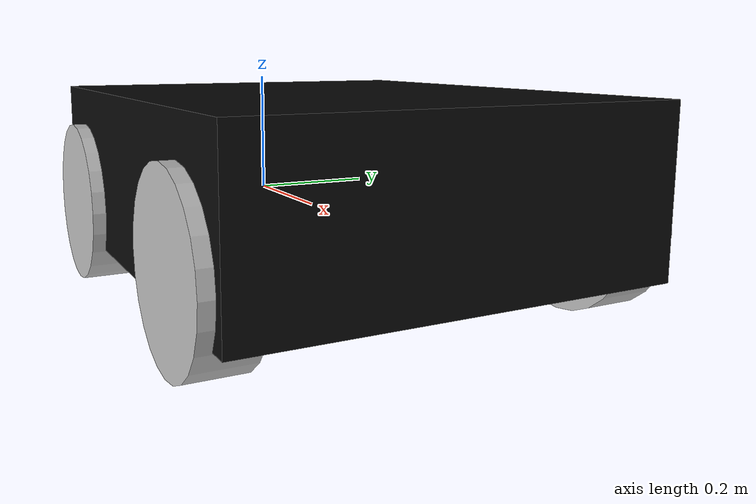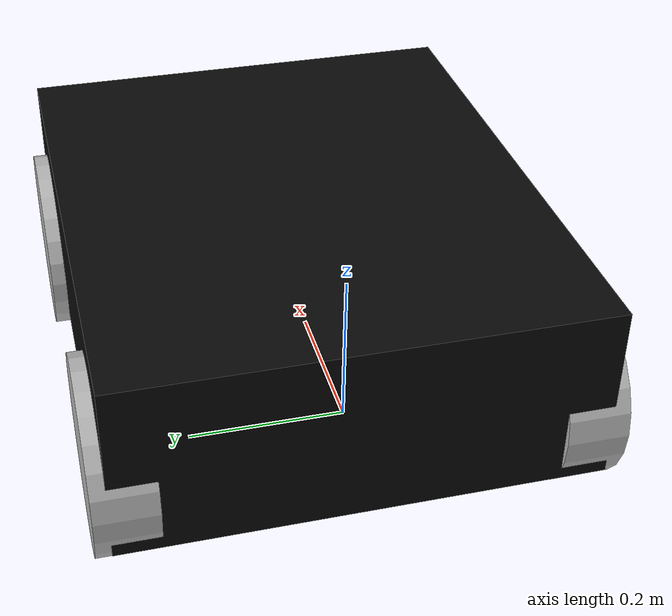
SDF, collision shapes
<sdf version="1.7">
  <model name="ackermann_current">
    <allow_auto_disable>false</allow_auto_disable>
    <link name="base_link">
      <gravity>true</gravity>
      <self_collide>false</self_collide>
      <inertial>
        <pose>0.262391507626 0 0.061550501734 0 0 0</pose>
        <mass>50</mass>
        <inertia>
          <ixx>1.91400003433</ixx>
          <ixy>0</ixy>
          <ixz>0</ixz>
          <iyy>2.67199993134</iyy>
          <iyz>0</iyz>
          <izz>4.08400011063</izz>
        </inertia>
      </inertial>
      <collision name="vehicle_body_collision">
        <pose>0.262391507626 0 0.061550501734 0 0 0</pose>
        <geometry>
          <box>
            <size>0.761610984802 0.631783008575 0.245800003409</size>
          </box>
        </geometry>
      </collision>
      <visual name="vehicle_body_visual">
        <pose>0 0 0 0 0 0</pose>
        <geometry>
          <mesh>
            <uri>package://agribot_vehicle_description/generated/ackermann_current/models/vehicle_visual.obj</uri>
          </mesh>
        </geometry>
      </visual>
      <visual name="imu_visual">
        <pose>0.1425 0 0.143 0.000572424 -0.009139547 -0.000002616</pose>
        <geometry>
          <mesh>
            <uri>model://agribot_hardware_bringup/meshes/hipnuc_n300pro.glb</uri>
          </mesh>
        </geometry>
      </visual>
      <visual name="c16_visual">
        <pose>0.480089121 -0.000371330 0.184451502 0.007648487 0.001835661 -3.141585634</pose>
        <geometry>
          <mesh>
            <uri>model://agribot_hardware_bringup/meshes/lslidar_c16_v4.glb</uri>
          </mesh>
        </geometry>
      </visual>
      <visual name="camera_body_visual">
        <pose>0.5535 0 0.154 0 0 0</pose>
        <geometry>
          <box>
            <size>0.044 0.040 0.040</size>
          </box>
        </geometry>
        <material>
          <ambient>0.035 0.035 0.035 1</ambient>
          <diffuse>0.035 0.035 0.035 1</diffuse>
        </material>
      </visual>
      <visual name="camera_lens_visual">
        <pose>0.5815 0 0.154 0 1.5707963267948966 0</pose>
        <geometry>
          <cylinder>
            <radius>0.014</radius>
            <length>0.012</length>
          </cylinder>
        </geometry>
        <material>
          <ambient>0.02 0.02 0.02 1</ambient>
          <diffuse>0.02 0.02 0.02 1</diffuse>
        </material>
      </visual>
      <visual name="rtk_master_radome">
        <pose>0.1425 0.2952585 0.76676 0 0 0</pose>
        <geometry>
          <cylinder>
            <radius>0.0225</radius>
            <length>0.036</length>
          </cylinder>
        </geometry>
        <material>
          <ambient>0.88 0.88 0.84 1</ambient>
          <diffuse>0.88 0.88 0.84 1</diffuse>
        </material>
      </visual>
      <visual name="rtk_master_stem">
        <pose>0.1425 0.2952585 0.69476 0 0 0</pose>
        <geometry>
          <cylinder>
            <radius>0.008</radius>
            <length>0.108</length>
          </cylinder>
        </geometry>
        <material>
          <ambient>0.06 0.06 0.06 1</ambient>
          <diffuse>0.06 0.06 0.06 1</diffuse>
        </material>
      </visual>
      <visual name="rtk_secondary_radome">
        <pose>0.1425 -0.2952585 0.76676 0 0 0</pose>
        <geometry>
          <cylinder>
            <radius>0.0225</radius>
            <length>0.036</length>
          </cylinder>
        </geometry>
        <material>
          <ambient>0.88 0.88 0.84 1</ambient>
          <diffuse>0.88 0.88 0.84 1</diffuse>
        </material>
      </visual>
      <visual name="rtk_secondary_stem">
        <pose>0.1425 -0.2952585 0.69476 0 0 0</pose>
        <geometry>
          <cylinder>
            <radius>0.008</radius>
            <length>0.108</length>
          </cylinder>
        </geometry>
        <material>
          <ambient>0.06 0.06 0.06 1</ambient>
          <diffuse>0.06 0.06 0.06 1</diffuse>
        </material>
      </visual>
      <sensor name="n300pro_imu" type="imu">
        <pose>0.14250010252 2.8882130465e-08 0.143001556396 0.00057242391631 -0.00913954898715 -2.61600803242e-06</pose>
        <always_on>true</always_on>
        <update_rate>100</update_rate>
        <visualize>false</visualize>
        <imu>
          <angular_velocity>
            <x>
              <noise type="gaussian">
                <mean>0</mean>
                <stddev>0.0008023</stddev>
              </noise>
            </x>
            <y>
              <noise type="gaussian">
                <mean>0</mean>
                <stddev>0.0008023</stddev>
              </noise>
            </y>
            <z>
              <noise type="gaussian">
                <mean>0</mean>
                <stddev>0.0008023</stddev>
              </noise>
            </z>
          </angular_velocity>
          <linear_acceleration>
            <x>
              <noise type="gaussian">
                <mean>0</mean>
                <stddev>0.01091</stddev>
              </noise>
            </x>
            <y>
              <noise type="gaussian">
                <mean>0</mean>
                <stddev>0.01091</stddev>
              </noise>
            </y>
            <z>
              <noise type="gaussian">
                <mean>0</mean>
                <stddev>0.01091</stddev>
              </noise>
            </z>
          </linear_acceleration>
        </imu>
        <plugin name="n300pro_imu_controller" filename="libgazebo_ros_imu_sensor.so">
          <ros>
            <namespace>/</namespace>
            <remapping>~/out:=imu/data</remapping>
          </ros>
          <frame_name>imu_link</frame_name>
        </plugin>
      </sensor>
      <sensor name="lslidar_c16_points" type="ray">
        <pose>0.48000010848 1.83202484294e-08 0.233001708984 -0.00764848850667 -0.00183566112537 7.01999988451e-06</pose>
        <always_on>true</always_on>
        <update_rate>10</update_rate>
        <visualize>false</visualize>
        <ray>
          <scan>
            <horizontal>
              <samples>2000</samples>
              <resolution>1</resolution>
              <min_angle>-3.141592653589793</min_angle>
              <max_angle>3.141592653589793</max_angle>
            </horizontal>
            <vertical>
              <samples>16</samples>
              <resolution>1</resolution>
              <min_angle>-0.2792526803190927</min_angle>
              <max_angle>0.24434609527920614</max_angle>
            </vertical>
          </scan>
          <range>
            <min>0.3</min>
            <max>100.0</max>
            <resolution>0.01</resolution>
          </range>
          <noise>
            <type>gaussian</type>
            <mean>0</mean>
            <stddev>0.01</stddev>
          </noise>
        </ray>
        <plugin name="c16_controller" filename="libgazebo_ros_velodyne_laser.so">
          <ros>
            <namespace>/</namespace>
            <remapping>~/out:=lidar/points</remapping>
          </ros>
          <frame_name>lidar_link</frame_name>
          <organize_cloud>false</organize_cloud>
          <min_range>0.3</min_range>
          <max_range>100.0</max_range>
          <gaussian_noise>0.01</gaussian_noise>
        </plugin>
      </sensor>
      <sensor name="hikrobot_right_camera" type="camera">
        <pose>0.575500130653 -9.59825552371e-09 0.154001235962 -2.32920654986e-10 7.77125586104e-11 1.45519152284e-11</pose>
        <always_on>true</always_on>
        <update_rate>10</update_rate>
        <visualize>false</visualize>
        <camera name="right_camera">
          <horizontal_fov>0.9362410911749182</horizontal_fov>
          <vertical_fov>0.7692094306470061</vertical_fov>
          <image>
            <width>1280</width>
            <height>1024</height>
            <format>R8G8B8</format>
          </image>
          <clip>
            <near>0.05</near>
            <far>100.0</far>
          </clip>
          <distortion>
            <k1>-0.06420938</k1>
            <k2>0.07455611</k2>
            <p1>-0.00096336</p1>
            <p2>0.00001838</p2>
            <k3>0.0</k3>
            <center>0.50993772734375 0.49129508185546875</center>
          </distortion>
          <noise>
            <type>gaussian</type>
            <mean>0</mean>
            <stddev>0.003</stddev>
          </noise>
        </camera>
        <plugin name="hikrobot_camera_controller" filename="libgazebo_ros_camera.so">
          <ros>
            <namespace>/</namespace>
            <remapping>camera/image_raw:=camera/rgb/image_raw</remapping>
            <remapping>camera/camera_info:=camera/rgb/camera_info</remapping>
          </ros>
          <camera_name>camera</camera_name>
          <frame_name>right_camera_optical_frame</frame_name>
          <camera_info_url>package://agribot_ackermann_mppi/config/hikrobot_camera_1280.yaml</camera_info_url>
        </plugin>
      </sensor>
    </link>
    <link name="front_left_steering_link">
      <pose relative_to="__model__">0.499848693609 0.294998437166 0.000669479137287 0 0 0</pose>
      <gravity>true</gravity>
      <self_collide>false</self_collide>
      <inertial>
        <mass>0.2</mass>
        <inertia>
          <ixx>0.0001</ixx>
          <iyy>0.0001</iyy>
          <izz>0.0001</izz>
        </inertia>
      </inertial>
    </link>
    <link name="front_right_steering_link">
      <pose relative_to="__model__">0.501325964928 -0.294998288155 -0.000631332746707 0 0 0</pose>
      <gravity>true</gravity>
      <self_collide>false</self_collide>
      <inertial>
        <mass>0.2</mass>
        <inertia>
          <ixx>0.0001</ixx>
          <iyy>0.0001</iyy>
          <izz>0.0001</izz>
        </inertia>
      </inertial>
    </link>
    <link name="front_left_wheel_link">
      <pose relative_to="__model__">0.499848693609 0.294998437166 0.000669479137287 0 0 0</pose>
      <gravity>true</gravity>
      <self_collide>false</self_collide>
      <inertial>
        <mass>3.0</mass>
        <inertia>
          <ixx>0.01223</ixx>
          <iyy>0.02438</iyy>
          <izz>0.01223</izz>
        </inertia>
      </inertial>
      <collision name="wheel_collision">
        <pose>0 0 0 1.5707963267948966 0 0</pose>
        <geometry>
          <cylinder>
            <radius>0.127499997616</radius>
            <length>0.0814310014248</length>
          </cylinder>
        </geometry>
        <surface>
          <contact>
            <ode>
              <kp>1000000000</kp>
              <kd>1</kd>
              <min_depth>0.001</min_depth>
            </ode>
          </contact>
          <friction>
            <ode>
              <mu>1.8</mu>
              <mu2>1.5</mu2>
              <fdir1>1 0 0</fdir1>
            </ode>
          </friction>
        </surface>
      </collision>
      <visual name="wheel_visual">
        <pose>0 0 0 0 0 1.5707963267948966</pose>
        <geometry>
          <mesh>
            <uri>model://agribot_hardware_bringup/meshes/ackermann_front_left_wheel.glb</uri>
          </mesh>
        </geometry>
      </visual>
    </link>
    <link name="front_right_wheel_link">
      <pose relative_to="__model__">0.501325964928 -0.294998288155 -0.000631332746707 0 0 0</pose>
      <gravity>true</gravity>
      <self_collide>false</self_collide>
      <inertial>
        <mass>3.0</mass>
        <inertia>
          <ixx>0.01223</ixx>
          <iyy>0.02438</iyy>
          <izz>0.01223</izz>
        </inertia>
      </inertial>
      <collision name="wheel_collision">
        <pose>0 0 0 1.5707963267948966 0 0</pose>
        <geometry>
          <cylinder>
            <radius>0.127499997616</radius>
            <length>0.0814310014248</length>
          </cylinder>
        </geometry>
        <surface>
          <contact>
            <ode>
              <kp>1000000000</kp>
              <kd>1</kd>
              <min_depth>0.001</min_depth>
            </ode>
          </contact>
          <friction>
            <ode>
              <mu>1.8</mu>
              <mu2>1.5</mu2>
              <fdir1>1 0 0</fdir1>
            </ode>
          </friction>
        </surface>
      </collision>
      <visual name="wheel_visual">
        <pose>0 0 0 0 0 1.5707963267948966</pose>
        <geometry>
          <mesh>
            <uri>model://agribot_hardware_bringup/meshes/ackermann_front_right_wheel.glb</uri>
          </mesh>
        </geometry>
      </visual>
    </link>
    <link name="rear_left_wheel_link">
      <pose relative_to="__model__">9.0567539246e-08 0.294999301434 0.000650405883789 0 0 0</pose>
      <gravity>true</gravity>
      <self_collide>false</self_collide>
      <inertial>
        <mass>3.0</mass>
        <inertia>
          <ixx>0.01223</ixx>
          <iyy>0.02438</iyy>
          <izz>0.01223</izz>
        </inertia>
      </inertial>
      <collision name="wheel_collision">
        <pose>0 0 0 1.5707963267948966 0 0</pose>
        <geometry>
          <cylinder>
            <radius>0.127499997616</radius>
            <length>0.0814310014248</length>
          </cylinder>
        </geometry>
        <surface>
          <contact>
            <ode>
              <kp>1000000000</kp>
              <kd>1</kd>
              <min_depth>0.001</min_depth>
            </ode>
          </contact>
          <friction>
            <ode>
              <mu>1.8</mu>
              <mu2>1.5</mu2>
              <fdir1>1 0 0</fdir1>
            </ode>
          </friction>
        </surface>
      </collision>
      <visual name="wheel_visual">
        <pose>0 0 0 0 0 1.5707963267948966</pose>
        <geometry>
          <mesh>
            <uri>model://agribot_hardware_bringup/meshes/ackermann_rear_left_wheel.glb</uri>
          </mesh>
        </geometry>
      </visual>
    </link>
    <link name="rear_right_wheel_link">
      <pose relative_to="__model__">8.60191562424e-08 -0.294999241829 -0.000646591302939 0 0 0</pose>
      <gravity>true</gravity>
      <self_collide>false</self_collide>
      <inertial>
        <mass>3.0</mass>
        <inertia>
          <ixx>0.01223</ixx>
          <iyy>0.02438</iyy>
          <izz>0.01223</izz>
        </inertia>
      </inertial>
      <collision name="wheel_collision">
        <pose>0 0 0 1.5707963267948966 0 0</pose>
        <geometry>
          <cylinder>
            <radius>0.127499997616</radius>
            <length>0.0814310014248</length>
          </cylinder>
        </geometry>
        <surface>
          <contact>
            <ode>
              <kp>1000000000</kp>
              <kd>1</kd>
              <min_depth>0.001</min_depth>
            </ode>
          </contact>
          <friction>
            <ode>
              <mu>1.8</mu>
              <mu2>1.5</mu2>
              <fdir1>1 0 0</fdir1>
            </ode>
          </friction>
        </surface>
      </collision>
      <visual name="wheel_visual">
        <pose>0 0 0 0 0 1.5707963267948966</pose>
        <geometry>
          <mesh>
            <uri>model://agribot_hardware_bringup/meshes/ackermann_rear_right_wheel.glb</uri>
          </mesh>
        </geometry>
      </visual>
    </link>
    <joint name="front_left_steering_joint" type="revolute">
      <pose relative_to="__model__">0.499848693609 0.294998437166 0.000669479137287 0 0 0</pose>
      <parent>base_link</parent>
      <child>front_left_steering_link</child>
      <axis>
        <xyz>0 0 1</xyz>
        <limit>
          <lower>-0.384000003338</lower>
          <upper>0.384000003338</upper>
          <effort>200</effort>
          <velocity>1.5</velocity>
        </limit>
        <dynamics>
          <damping>2.0</damping>
        </dynamics>
      </axis>
    </joint>
    <joint name="front_right_steering_joint" type="revolute">
      <pose relative_to="__model__">0.501325964928 -0.294998288155 -0.000631332746707 0 0 0</pose>
      <parent>base_link</parent>
      <child>front_right_steering_link</child>
      <axis>
        <xyz>0 0 1</xyz>
        <limit>
          <lower>-0.384000003338</lower>
          <upper>0.384000003338</upper>
          <effort>200</effort>
          <velocity>1.5</velocity>
        </limit>
        <dynamics>
          <damping>2.0</damping>
        </dynamics>
      </axis>
    </joint>
    <joint name="front_left_wheel_joint" type="revolute">
      <pose relative_to="__model__">0.499848693609 0.294998437166 0.000669479137287 0 0 0</pose>
      <parent>front_left_steering_link</parent>
      <child>front_left_wheel_link</child>
      <axis>
        <xyz>0 1 0</xyz>
        <limit>
          <lower>-1e16</lower>
          <upper>1e16</upper>
          <effort>200</effort>
          <velocity>100</velocity>
        </limit>
      </axis>
    </joint>
    <joint name="front_right_wheel_joint" type="revolute">
      <pose relative_to="__model__">0.501325964928 -0.294998288155 -0.000631332746707 0 0 0</pose>
      <parent>front_right_steering_link</parent>
      <child>front_right_wheel_link</child>
      <axis>
        <xyz>0 1 0</xyz>
        <limit>
          <lower>-1e16</lower>
          <upper>1e16</upper>
          <effort>200</effort>
          <velocity>100</velocity>
        </limit>
      </axis>
    </joint>
    <joint name="rear_left_wheel_joint" type="revolute">
      <pose relative_to="__model__">9.0567539246e-08 0.294999301434 0.000650405883789 0 0 0</pose>
      <parent>base_link</parent>
      <child>rear_left_wheel_link</child>
      <axis>
        <xyz>0 1 0</xyz>
        <limit>
          <lower>-1e16</lower>
          <upper>1e16</upper>
          <effort>200</effort>
          <velocity>100</velocity>
        </limit>
      </axis>
    </joint>
    <joint name="rear_right_wheel_joint" type="revolute">
      <pose relative_to="__model__">8.60191562424e-08 -0.294999241829 -0.000646591302939 0 0 0</pose>
      <parent>base_link</parent>
      <child>rear_right_wheel_link</child>
      <axis>
        <xyz>0 1 0</xyz>
        <limit>
          <lower>-1e16</lower>
          <upper>1e16</upper>
          <effort>200</effort>
          <velocity>100</velocity>
        </limit>
      </axis>
    </joint>
    <plugin name="ackermann_drive" filename="libagribot_ackermann_mppi_drive.so">
      <ros>
        <namespace>/</namespace>
      </ros>
      <cmd_vel_topic>/nav2/cmd_vel</cmd_vel_topic>
      <odom_topic>/odom</odom_topic>
      <joint_state_topic>/joint_states</joint_state_topic>
      <odom_frame>odom</odom_frame>
      <base_frame>base_link</base_frame>
      <wheelbase>0.50058722496</wheelbase>
      <front_track_width>0.589999973774</front_track_width>
      <rear_track_width>0.589999973774</rear_track_width>
      <wheel_radius>0.127499997616</wheel_radius>
      <max_steering_angle>0.384000003338</max_steering_angle>
      <max_steering_rate>1.20000004768</max_steering_rate>
      <max_speed>0.300000011921</max_speed>
      <max_accel>0.800000011921</max_accel>
      <min_speed_for_curvature>0.02</min_speed_for_curvature>
      <command_timeout>0.5</command_timeout>
      <publish_rate>30.0</publish_rate>
      <publish_tf>false</publish_tf>
      <wheel_torque>200.0</wheel_torque>
    </plugin>
  </model>
</sdf>
